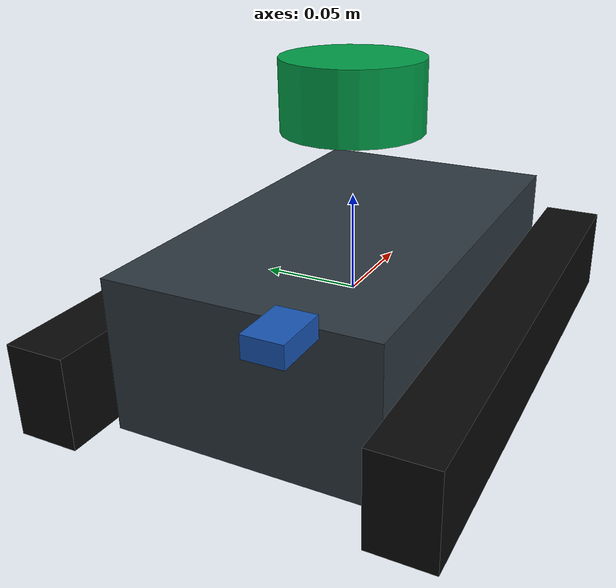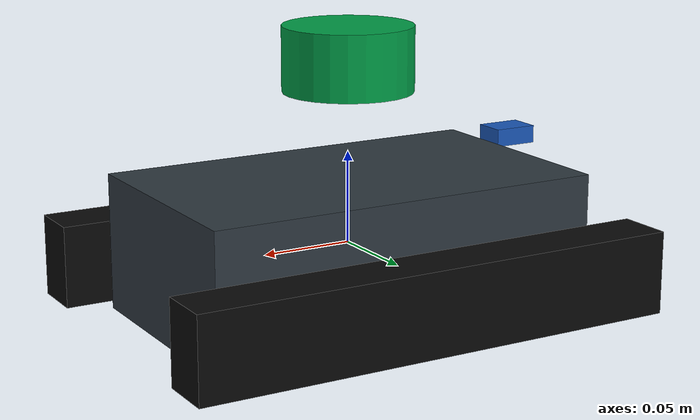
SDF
<?xml version="1.0"?>
<sdf version="1.7">
  <model name="inspection_tracked_robot">
    <self_collide>false</self_collide>

    <link name="base_link">
      <pose>0 0 0 0 0 0</pose>
      <inertial>
        <mass>3.0</mass>
        <inertia>
          <ixx>0.0112</ixx>
          <ixy>0</ixy>
          <ixz>0</ixz>
          <iyy>0.0172</iyy>
          <iyz>0</iyz>
          <izz>0.0252</izz>
        </inertia>
      </inertial>
      <collision name="footprint_collision">
        <geometry>
          <box>
            <size>0.25 0.196 0.08</size>
          </box>
        </geometry>
      </collision>
      <visual name="body_visual">
        <geometry>
          <box>
            <size>0.22 0.13 0.075</size>
          </box>
        </geometry>
        <material>
          <ambient>0.18 0.22 0.25 1</ambient>
          <diffuse>0.18 0.22 0.25 1</diffuse>
          <specular>0.05 0.06 0.06 1</specular>
        </material>
      </visual>
      <visual name="left_track_visual">
        <pose>0 0.083 -0.012 0 0 0</pose>
        <geometry>
          <box>
            <size>0.27 0.030 0.045</size>
          </box>
        </geometry>
        <material>
          <ambient>0.035 0.035 0.035 1</ambient>
          <diffuse>0.035 0.035 0.035 1</diffuse>
        </material>
      </visual>
      <visual name="right_track_visual">
        <pose>0 -0.083 -0.012 0 0 0</pose>
        <geometry>
          <box>
            <size>0.27 0.030 0.045</size>
          </box>
        </geometry>
        <material>
          <ambient>0.035 0.035 0.035 1</ambient>
          <diffuse>0.035 0.035 0.035 1</diffuse>
        </material>
      </visual>
    </link>

    <link name="left_drive_wheel">
      <pose>0 0.115 -0.015 -1.5707963 0 0</pose>
      <inertial>
        <mass>0.25</mass>
        <inertia>
          <ixx>0.00009</ixx>
          <ixy>0</ixy>
          <ixz>0</ixz>
          <iyy>0.00009</iyy>
          <iyz>0</iyz>
          <izz>0.000153</izz>
        </inertia>
      </inertial>
      <collision name="collision">
        <geometry>
          <cylinder>
            <radius>0.035</radius>
            <length>0.025</length>
          </cylinder>
        </geometry>
        <surface>
          <friction>
            <ode>
              <mu>2.0</mu>
              <mu2>2.0</mu2>
            </ode>
          </friction>
        </surface>
      </collision>
    </link>

    <link name="right_drive_wheel">
      <pose>0 -0.115 -0.015 -1.5707963 0 0</pose>
      <inertial>
        <mass>0.25</mass>
        <inertia>
          <ixx>0.00009</ixx>
          <ixy>0</ixy>
          <ixz>0</ixz>
          <iyy>0.00009</iyy>
          <iyz>0</iyz>
          <izz>0.000153</izz>
        </inertia>
      </inertial>
      <collision name="collision">
        <geometry>
          <cylinder>
            <radius>0.035</radius>
            <length>0.025</length>
          </cylinder>
        </geometry>
        <surface>
          <friction>
            <ode>
              <mu>2.0</mu>
              <mu2>2.0</mu2>
            </ode>
          </friction>
        </surface>
      </collision>
    </link>

    <link name="front_skid">
      <pose>0.095 0 -0.038 0 0 0</pose>
      <collision name="collision">
        <geometry>
          <sphere>
            <radius>0.012</radius>
          </sphere>
        </geometry>
        <surface>
          <friction>
            <ode>
              <mu>0.1</mu>
              <mu2>0.1</mu2>
            </ode>
          </friction>
        </surface>
      </collision>
      <inertial>
        <mass>0.02</mass>
        <inertia>
          <ixx>0.000001</ixx>
          <ixy>0</ixy>
          <ixz>0</ixz>
          <iyy>0.000001</iyy>
          <iyz>0</iyz>
          <izz>0.000001</izz>
        </inertia>
      </inertial>
    </link>

    <link name="rear_skid">
      <pose>-0.095 0 -0.038 0 0 0</pose>
      <collision name="collision">
        <geometry>
          <sphere>
            <radius>0.012</radius>
          </sphere>
        </geometry>
        <surface>
          <friction>
            <ode>
              <mu>0.1</mu>
              <mu2>0.1</mu2>
            </ode>
          </friction>
        </surface>
      </collision>
      <inertial>
        <mass>0.02</mass>
        <inertia>
          <ixx>0.000001</ixx>
          <ixy>0</ixy>
          <ixz>0</ixz>
          <iyy>0.000001</iyy>
          <iyz>0</iyz>
          <izz>0.000001</izz>
        </inertia>
      </inertial>
    </link>

    <link name="laser">
      <pose>0 0 0.10 0 0 3.1415926</pose>
      <visual name="visual">
        <geometry>
          <cylinder>
            <radius>0.035</radius>
            <length>0.035</length>
          </cylinder>
        </geometry>
        <material>
          <ambient>0 0.62 0.28 1</ambient>
          <diffuse>0 0.62 0.28 1</diffuse>
        </material>
      </visual>
      <inertial>
        <mass>0.10</mass>
        <inertia>
          <ixx>0.00005</ixx>
          <ixy>0</ixy>
          <ixz>0</ixz>
          <iyy>0.00005</iyy>
          <iyz>0</iyz>
          <izz>0.00005</izz>
        </inertia>
      </inertial>
      <sensor name="scan" type="gpu_lidar">
        <topic>/scan</topic>
        <gz_frame_id>laser</gz_frame_id>
        <update_rate>10</update_rate>
        <always_on>true</always_on>
        <visualize>true</visualize>
        <lidar>
          <scan>
            <horizontal>
              <samples>720</samples>
              <resolution>1</resolution>
              <min_angle>-3.1415926</min_angle>
              <max_angle>3.1415926</max_angle>
            </horizontal>
            <vertical>
              <samples>1</samples>
              <resolution>1</resolution>
              <min_angle>0</min_angle>
              <max_angle>0</max_angle>
            </vertical>
          </scan>
          <range>
            <min>0.15</min>
            <max>8.0</max>
            <resolution>0.01</resolution>
          </range>
        </lidar>
      </sensor>
    </link>

    <link name="imu_link">
      <pose>-0.125 -0.031 0.040 0 0 0</pose>
      <visual name="visual">
        <geometry>
          <box>
            <size>0.025 0.018 0.010</size>
          </box>
        </geometry>
        <material>
          <ambient>0.1 0.34 0.72 1</ambient>
          <diffuse>0.1 0.34 0.72 1</diffuse>
        </material>
      </visual>
      <inertial>
        <mass>0.03</mass>
        <inertia>
          <ixx>0.00001</ixx>
          <ixy>0</ixy>
          <ixz>0</ixz>
          <iyy>0.00001</iyy>
          <iyz>0</iyz>
          <izz>0.00001</izz>
        </inertia>
      </inertial>
      <sensor name="imu_sensor" type="imu">
        <topic>/sim/imu/data_raw</topic>
        <gz_frame_id>imu_link</gz_frame_id>
        <update_rate>100</update_rate>
        <always_on>true</always_on>
        <visualize>false</visualize>
      </sensor>
    </link>

    <joint name="left_wheel_joint" type="revolute">
      <parent>base_link</parent>
      <child>left_drive_wheel</child>
      <axis>
        <xyz>0 0 1</xyz>
        <limit>
          <lower>-1.79769e+308</lower>
          <upper>1.79769e+308</upper>
        </limit>
      </axis>
    </joint>

    <joint name="right_wheel_joint" type="revolute">
      <parent>base_link</parent>
      <child>right_drive_wheel</child>
      <axis>
        <xyz>0 0 1</xyz>
        <limit>
          <lower>-1.79769e+308</lower>
          <upper>1.79769e+308</upper>
        </limit>
      </axis>
    </joint>

    <joint name="front_skid_joint" type="ball">
      <parent>base_link</parent>
      <child>front_skid</child>
    </joint>

    <joint name="rear_skid_joint" type="ball">
      <parent>base_link</parent>
      <child>rear_skid</child>
    </joint>

    <joint name="base_to_laser" type="fixed">
      <parent>base_link</parent>
      <child>laser</child>
    </joint>

    <joint name="base_to_imu" type="fixed">
      <parent>base_link</parent>
      <child>imu_link</child>
    </joint>

    <plugin filename="gz-sim-diff-drive-system" name="gz::sim::systems::DiffDrive">
      <left_joint>left_wheel_joint</left_joint>
      <right_joint>right_wheel_joint</right_joint>
      <wheel_separation>0.23</wheel_separation>
      <wheel_radius>0.035</wheel_radius>
      <topic>/cmd_vel</topic>
      <odom_publish_frequency>1</odom_publish_frequency>
      <max_linear_acceleration>0.35</max_linear_acceleration>
      <min_linear_acceleration>-0.45</min_linear_acceleration>
      <max_angular_acceleration>0.70</max_angular_acceleration>
      <min_angular_acceleration>-0.90</min_angular_acceleration>
      <max_linear_velocity>0.18</max_linear_velocity>
      <min_linear_velocity>-0.18</min_linear_velocity>
      <max_angular_velocity>0.55</max_angular_velocity>
      <min_angular_velocity>-0.55</min_angular_velocity>
    </plugin>
  </model>
</sdf>
